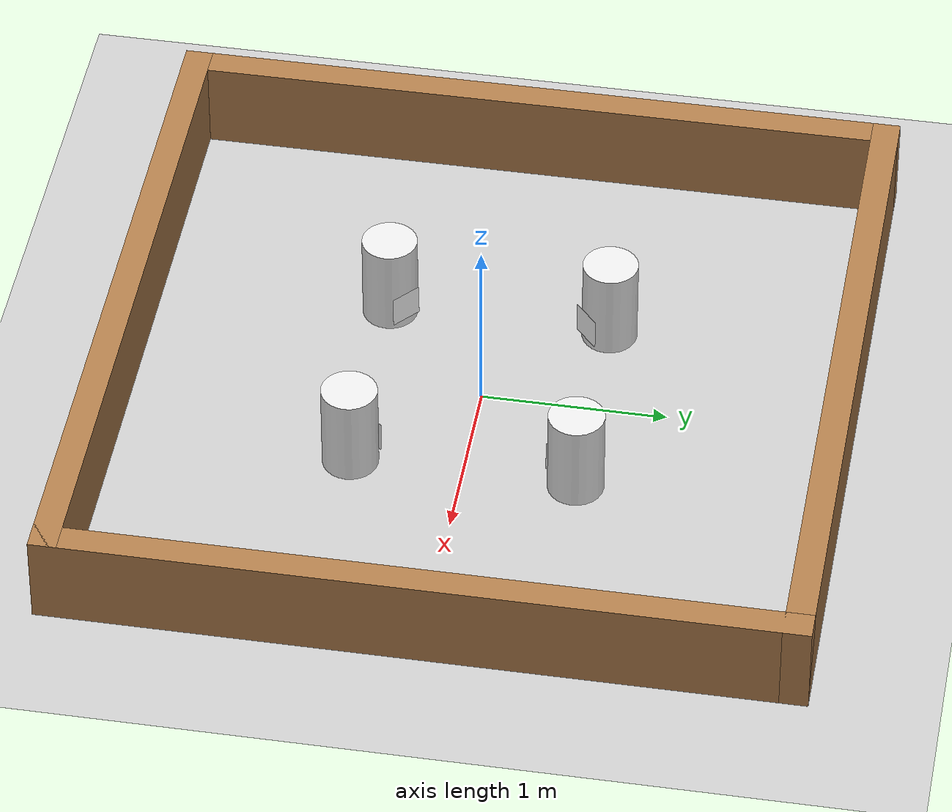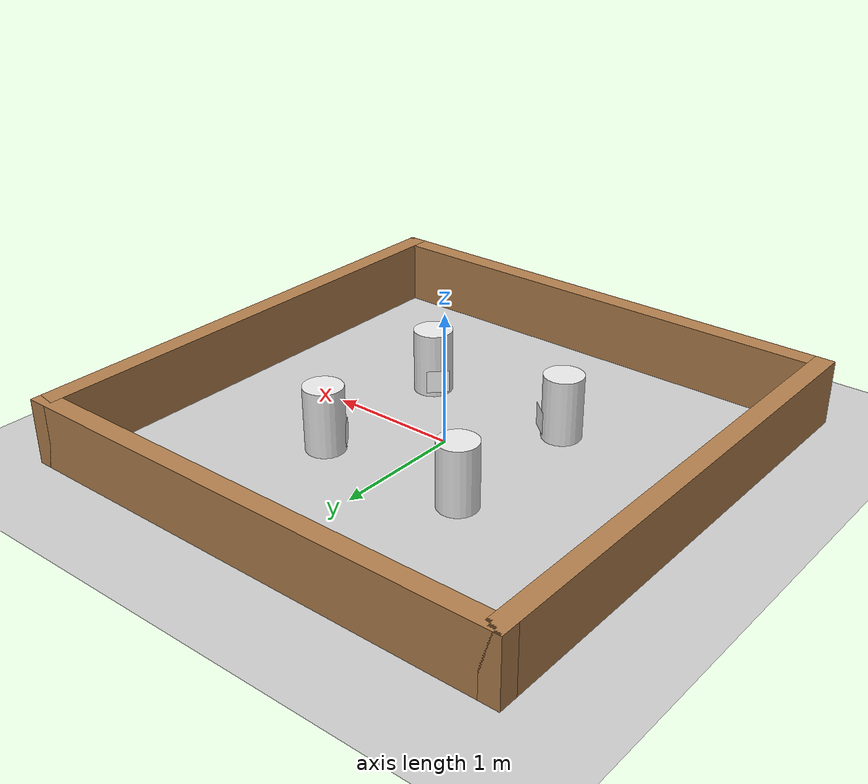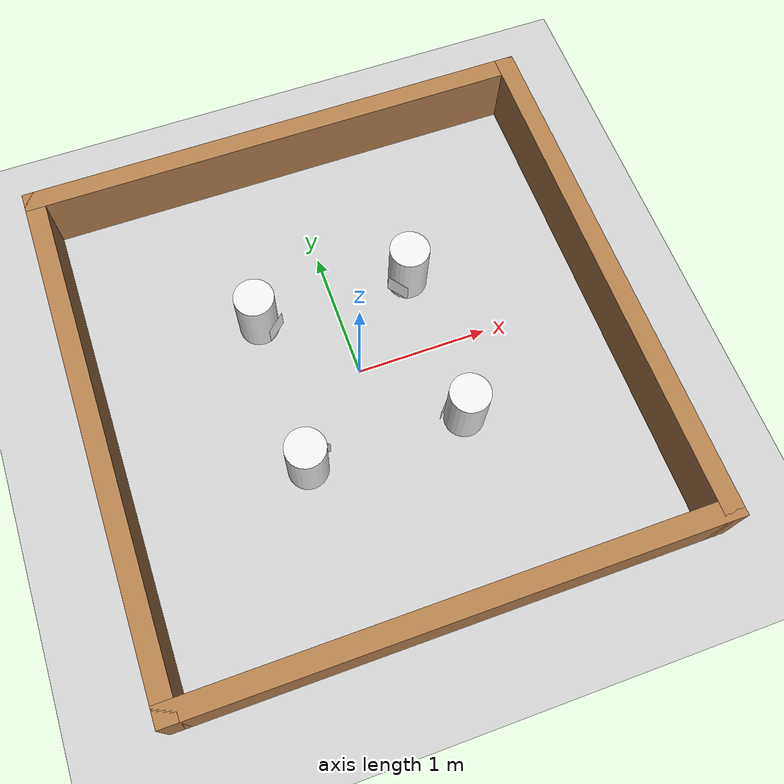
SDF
<sdf version="1.7">
 <world name="default">
  <light name="sun" type="directional">
   <pose>0 0 10 0 -0 0</pose>
   <diffuse>0.8 0.8 0.8 1</diffuse>
   <specular>0.2 0.2 0.2 1</specular>
   <attenuation>
    <range>1000</range>
    <constant>0.9</constant>
    <linear>0.01</linear>
    <quadratic>0.001</quadratic>
   </attenuation>
   <direction>-0.5 0.1 -0.9</direction>
   <spot><inner_angle>0</inner_angle><outer_angle>0</outer_angle><falloff>0</falloff></spot>
  </light>
  <model name="ground_plane">
   <static>1</static>
   <link name="link">
    <collision name="collision">
     <geometry><plane><normal>0 0 1</normal><size>100 100</size></plane></geometry>
     <surface>
      <contact><collide_bitmask>65535</collide_bitmask></contact>
      <friction><ode><mu>100</mu><mu2>50</mu2></ode></friction>
     </surface>
    </collision>
    <visual name="visual">
     <cast_shadows>0</cast_shadows>
     <geometry><plane><normal>0 0 1</normal><size>100 100</size></plane></geometry>
     <material>
      <script><uri>file://media/materials/scripts/gazebo.material</uri><name>Gazebo/Grey</name></script>
     </material>
    </visual>
   </link>
  </model>
  <physics type="ode">
   <real_time_update_rate>1000</real_time_update_rate>
   <max_step_size>0.001</max_step_size>
   <real_time_factor>1</real_time_factor>
   <ode>
    <solver>
     <type>quick</type>
     <iters>150</iters>
     <precon_iters>0</precon_iters>
     <sor>1.4</sor>
     <use_dynamic_moi_rescaling>1</use_dynamic_moi_rescaling>
    </solver>
    <constraints>
     <cfm>1e-05</cfm>
     <erp>0.2</erp>
     <contact_max_correcting_vel>2000</contact_max_correcting_vel>
     <contact_surface_layer>0.01</contact_surface_layer>
    </constraints>
   </ode>
  </physics>
  <model name="turtlebot3_square">
   <link name="Wall_0">
    <collision name="Wall_0_Collision">
     <geometry><box><size>4 0.15 0.5</size></box></geometry>
     <pose>0 0 0.25 0 -0 0</pose>
    </collision>
    <visual name="Wall_0_Visual">
     <pose>0 0 0.25 0 -0 0</pose>
     <geometry><box><size>4 0.15 0.5</size></box></geometry>
     <material>
      <script><uri>file://media/materials/scripts/gazebo.material</uri><name>Gazebo/Wood</name></script>
      <ambient>1 1 1 1</ambient>
     </material>
    </visual>
    <pose>0 1.925 0 0 -0 0</pose>
   </link>
   <link name="Wall_2">
    <collision name="Wall_2_Collision">
     <geometry><box><size>4 0.15 0.5</size></box></geometry>
     <pose>0 0 0.25 0 -0 0</pose>
    </collision>
    <visual name="Wall_2_Visual">
     <pose>0 0 0.25 0 -0 0</pose>
     <geometry><box><size>4 0.15 0.5</size></box></geometry>
     <material>
      <script><uri>file://media/materials/scripts/gazebo.material</uri><name>Gazebo/Wood</name></script>
      <ambient>1 1 1 1</ambient>
     </material>
    </visual>
    <pose>-1.925 0 0 0 0 -1.5708</pose>
   </link>
   <link name="Wall_3">
    <collision name="Wall_3_Collision">
     <geometry><box><size>4 0.15 0.5</size></box></geometry>
     <pose>0 0 0.25 0 -0 0</pose>
    </collision>
    <visual name="Wall_3_Visual">
     <pose>0 0 0.25 0 -0 0</pose>
     <geometry><box><size>4 0.15 0.5</size></box></geometry>
     <material>
      <script><uri>file://media/materials/scripts/gazebo.material</uri><name>Gazebo/Wood</name></script>
      <ambient>1 1 1 1</ambient>
     </material>
    </visual>
    <pose>0 -1.925 0 0 -0 0</pose>
   </link>
   <link name="Wall_4">
    <collision name="Wall_4_Collision">
     <geometry><box><size>4 0.15 0.5</size></box></geometry>
     <pose>0 0 0.25 0 -0 0</pose>
    </collision>
    <visual name="Wall_4_Visual">
     <pose>0 0 0.25 0 -0 0</pose>
     <geometry><box><size>4 0.15 0.5</size></box></geometry>
     <material>
      <script><uri>file://media/materials/scripts/gazebo.material</uri><name>Gazebo/Wood</name></script>
      <ambient>1 1 1 1</ambient>
     </material>
    </visual>
    <pose>1.925 0 0 0 -0 1.5708</pose>
   </link>
   <static>1</static>
  </model>
  <model name="obstacle">
   <pose>0.00032 5.1e-05 -1e-06 2e-06 0 -7.7e-05</pose>
   <link name="obstacle">
    <collision name="obstacle_1">
     <pose>-0.6 -0.6 0.25 0 -0 0</pose>
     <geometry><cylinder><radius>0.15</radius><length>0.5</length></cylinder></geometry>
    </collision>
    <visual name="obstacle_1">
     <pose>-0.6 -0.6 0.25 0 -0 0</pose>
     <geometry><cylinder><radius>0.15</radius><length>0.5</length></cylinder></geometry>
     <material>
      <script><uri>file://media/materials/scripts/gazebo.material</uri><name>Gazebo/White</name></script>
     </material>
    </visual>
    <collision name="obstacle_2">
     <pose>-0.6 0.6 0.25 0 -0 0</pose>
     <geometry><cylinder><radius>0.15</radius><length>0.5</length></cylinder></geometry>
    </collision>
    <visual name="obstacle_2">
     <pose>-0.6 0.6 0.25 0 -0 0</pose>
     <geometry><cylinder><radius>0.15</radius><length>0.5</length></cylinder></geometry>
     <material>
      <script><uri>file://media/materials/scripts/gazebo.material</uri><name>Gazebo/White</name></script>
     </material>
    </visual>
    <collision name="obstacle_3">
     <pose>0.6 -0.6 0.25 0 -0 0</pose>
     <geometry><cylinder><radius>0.15</radius><length>0.5</length></cylinder></geometry>
    </collision>
    <visual name="obstacle_3">
     <pose>0.6 -0.6 0.25 0 -0 0</pose>
     <geometry><cylinder><radius>0.15</radius><length>0.5</length></cylinder></geometry>
     <material>
      <script><uri>file://media/materials/scripts/gazebo.material</uri><name>Gazebo/White</name></script>
     </material>
    </visual>
    <collision name="obstacle_4">
     <pose>0.6 0.6 0.25 0 -0 0</pose>
     <geometry><cylinder><radius>0.15</radius><length>0.5</length></cylinder></geometry>
    </collision>
    <visual name="obstacle_4">
     <pose>0.6 0.6 0.25 0 -0 0</pose>
     <geometry><cylinder><radius>0.15</radius><length>0.5</length></cylinder></geometry>
     <material>
      <script><uri>file://media/materials/scripts/gazebo.material</uri><name>Gazebo/White</name></script>
     </material>
    </visual>
    <inertial>
     <inertia><ixx>1</ixx><ixy>0</ixy><ixz>0</ixz><iyy>1</iyy><iyz>0</iyz><izz>1</izz></inertia>
     <mass>1</mass>
    </inertial>
   </link>
  </model>
  <scene><ambient>0.4 0.4 0.4 1</ambient><background>0.7 0.7 0.7 1</background><shadows>1</shadows></scene>
  <gravity>0 0 -9.8</gravity>
  <magnetic_field>6e-06 2.3e-05 -4.2e-05</magnetic_field>
  <atmosphere type="adiabatic"/>
  <spherical_coordinates>
   <surface_model>EARTH_WGS84</surface_model>
   <latitude_deg>0</latitude_deg>
   <longitude_deg>0</longitude_deg>
   <elevation>0</elevation>
   <heading_deg>0</heading_deg>
  </spherical_coordinates>
  <model name="aruco_visual_marker_0">
   <link name="marker">
    <visual name="visual">
     <geometry><box><size>0.1778 0.1778 1e-05</size></box></geometry>
     <material>
      <script>
       <uri>model://aruco_visual_marker_0/materials/scripts</uri>
       <uri>model://aruco_visual_marker_0/materials/textures</uri>
       <name>ArucoVisualMarker0/Marker</name>
      </script>
      <ambient>1 1 1 1</ambient>
      <diffuse>1 1 1 1</diffuse>
      <specular>0 0 0 1</specular>
      <emissive>1 1 1 0</emissive>
      <shader type="vertex"><normal_map>__default__</normal_map></shader>
     </material>
    </visual>
    <collision name="collision"><geometry><box><size>0.1778 0.1778 1e-05</size></box></geometry></collision>
   </link>
   <link name="marker_pad">
    <pose relative_to="marker">0 0 -1e-05 0 -0 0</pose>
    <visual name="visual">
     <geometry><box><size>0.1778 0.1778 1e-05</size></box></geometry>
     <material>
      <lighting>1</lighting>
      <script><uri>file://media/materials/scripts/gazebo.material</uri><name>Gazebo/White</name></script>
      <ambient>0.3 0.3 0.3 1</ambient>
      <diffuse>0.7 0.7 0.7 1</diffuse>
      <specular>0.01 0.01 0.01 1</specular>
      <emissive>1 1 1 0</emissive>
      <shader type="vertex"><normal_map>__default__</normal_map></shader>
     </material>
    </visual>
    <collision name="collision"><geometry><box><size>0.1778 0.1778 1e-05</size></box></geometry></collision>
   </link>
   <joint name="marker_JOINT_marker_pad" type="revolute">
    <parent>marker</parent>
    <child>marker_pad</child>
    <axis>
     <xyz>0 0 1</xyz>
     <limit><upper>0</upper><lower>0</lower></limit>
     <dynamics><spring_reference>0</spring_reference><spring_stiffness>0</spring_stiffness></dynamics>
    </axis>
   </joint>
   <static>1</static>
   <pose>0.483802 0.502148 0.128716 -2.48504 -1.56716 -3.14159</pose>
  </model>
  <model name="aruco_visual_marker_1">
   <link name="marker">
    <visual name="visual">
     <geometry><box><size>0.1778 0.1778 1e-05</size></box></geometry>
     <material>
      <script>
       <uri>model://aruco_visual_marker_1/materials/scripts</uri>
       <uri>model://aruco_visual_marker_1/materials/textures</uri>
       <name>ArucoVisualMarker1/Marker</name>
      </script>
      <ambient>1 1 1 1</ambient>
      <diffuse>1 1 1 1</diffuse>
      <specular>0 0 0 1</specular>
      <emissive>1 1 1 0</emissive>
      <shader type="vertex"><normal_map>__default__</normal_map></shader>
     </material>
    </visual>
    <collision name="collision"><geometry><box><size>0.1778 0.1778 1e-05</size></box></geometry></collision>
   </link>
   <link name="marker_pad">
    <pose relative_to="marker">0 0 -1e-05 0 -0 0</pose>
    <visual name="visual">
     <geometry><box><size>0.1778 0.1778 1e-05</size></box></geometry>
     <material>
      <lighting>1</lighting>
      <script><uri>file://media/materials/scripts/gazebo.material</uri><name>Gazebo/White</name></script>
      <ambient>0.3 0.3 0.3 1</ambient>
      <diffuse>0.7 0.7 0.7 1</diffuse>
      <specular>0.01 0.01 0.01 1</specular>
      <emissive>1 1 1 0</emissive>
      <shader type="vertex"><normal_map>__default__</normal_map></shader>
     </material>
    </visual>
    <collision name="collision"><geometry><box><size>0.1778 0.1778 1e-05</size></box></geometry></collision>
   </link>
   <joint name="marker_JOINT_marker_pad" type="revolute">
    <parent>marker</parent>
    <child>marker_pad</child>
    <axis>
     <xyz>0 0 1</xyz>
     <limit><upper>0</upper><lower>0</lower></limit>
     <dynamics><spring_reference>0</spring_reference><spring_stiffness>0</spring_stiffness></dynamics>
    </axis>
   </joint>
   <static>1</static>
   <pose>0.479662 -0.508635 0.127414 2.38035 -1.57073 3.14087</pose>
  </model>
  <model name="aruco_visual_marker_2">
   <link name="marker">
    <visual name="visual">
     <geometry><box><size>0.1778 0.1778 1e-05</size></box></geometry>
     <material>
      <script>
       <uri>model://aruco_visual_marker_2/materials/scripts</uri>
       <uri>model://aruco_visual_marker_2/materials/textures</uri>
       <name>ArucoVisualMarker2/Marker</name>
      </script>
      <ambient>1 1 1 1</ambient>
      <diffuse>1 1 1 1</diffuse>
      <specular>0 0 0 1</specular>
      <emissive>1 1 1 0</emissive>
      <shader type="vertex"><normal_map>__default__</normal_map></shader>
     </material>
    </visual>
    <collision name="collision"><geometry><box><size>0.1778 0.1778 1e-05</size></box></geometry></collision>
   </link>
   <link name="marker_pad">
    <pose relative_to="marker">0 0 -1e-05 0 -0 0</pose>
    <visual name="visual">
     <geometry><box><size>0.1778 0.1778 1e-05</size></box></geometry>
     <material>
      <lighting>1</lighting>
      <script><uri>file://media/materials/scripts/gazebo.material</uri><name>Gazebo/White</name></script>
      <ambient>0.3 0.3 0.3 1</ambient>
      <diffuse>0.7 0.7 0.7 1</diffuse>
      <specular>0.01 0.01 0.01 1</specular>
      <emissive>1 1 1 0</emissive>
      <shader type="vertex"><normal_map>__default__</normal_map></shader>
     </material>
    </visual>
    <collision name="collision"><geometry><box><size>0.1778 0.1778 1e-05</size></box></geometry></collision>
   </link>
   <joint name="marker_JOINT_marker_pad" type="revolute">
    <parent>marker</parent>
    <child>marker_pad</child>
    <axis>
     <xyz>0 0 1</xyz>
     <limit><upper>0</upper><lower>0</lower></limit>
     <dynamics><spring_reference>0</spring_reference><spring_stiffness>0</spring_stiffness></dynamics>
    </axis>
   </joint>
   <static>1</static>
   <pose>-0.478365 -0.491149 0.150938 2.28856 1.56973 -3.14158</pose>
  </model>
  <model name="aruco_visual_marker_3">
   <link name="marker">
    <visual name="visual">
     <geometry><box><size>0.1778 0.1778 1e-05</size></box></geometry>
     <material>
      <script>
       <uri>model://aruco_visual_marker_3/materials/scripts</uri>
       <uri>model://aruco_visual_marker_3/materials/textures</uri>
       <name>ArucoVisualMarker3/Marker</name>
      </script>
      <ambient>1 1 1 1</ambient>
      <diffuse>1 1 1 1</diffuse>
      <specular>0 0 0 1</specular>
      <emissive>1 1 1 0</emissive>
      <shader type="vertex"><normal_map>__default__</normal_map></shader>
     </material>
    </visual>
    <collision name="collision"><geometry><box><size>0.1778 0.1778 1e-05</size></box></geometry></collision>
   </link>
   <link name="marker_pad">
    <pose relative_to="marker">0 0 -1e-05 0 -0 0</pose>
    <visual name="visual">
     <geometry><box><size>0.1778 0.1778 1e-05</size></box></geometry>
     <material>
      <lighting>1</lighting>
      <script><uri>file://media/materials/scripts/gazebo.material</uri><name>Gazebo/White</name></script>
      <ambient>0.3 0.3 0.3 1</ambient>
      <diffuse>0.7 0.7 0.7 1</diffuse>
      <specular>0.01 0.01 0.01 1</specular>
      <emissive>1 1 1 0</emissive>
      <shader type="vertex"><normal_map>__default__</normal_map></shader>
     </material>
    </visual>
    <collision name="collision"><geometry><box><size>0.1778 0.1778 1e-05</size></box></geometry></collision>
   </link>
   <joint name="marker_JOINT_marker_pad" type="revolute">
    <parent>marker</parent>
    <child>marker_pad</child>
    <axis>
     <xyz>0 0 1</xyz>
     <limit><upper>0</upper><lower>0</lower></limit>
     <dynamics><spring_reference>0</spring_reference><spring_stiffness>0</spring_stiffness></dynamics>
    </axis>
   </joint>
   <static>1</static>
   <pose>-0.490446 0.488222 0.14144 0.845481 1.56912 -8e-06</pose>
  </model>
 </world>
</sdf>
